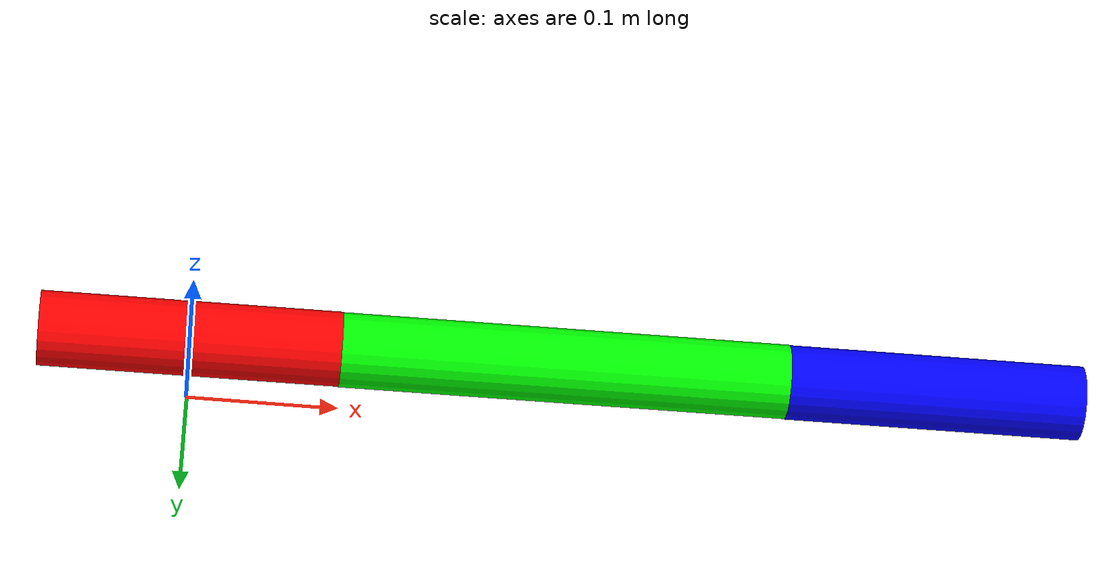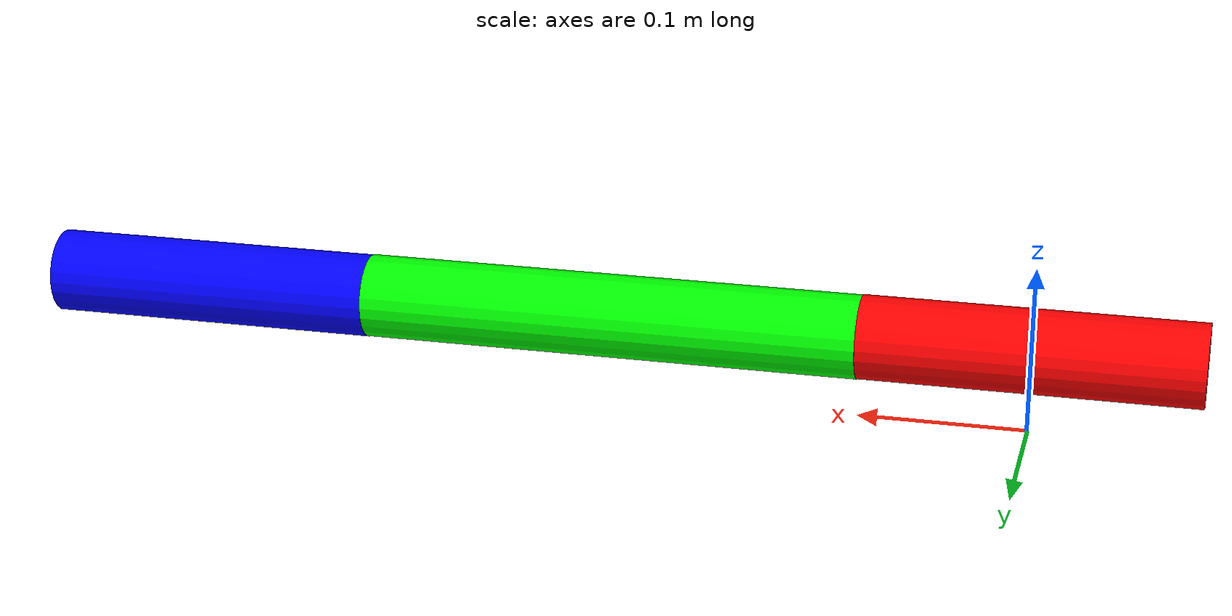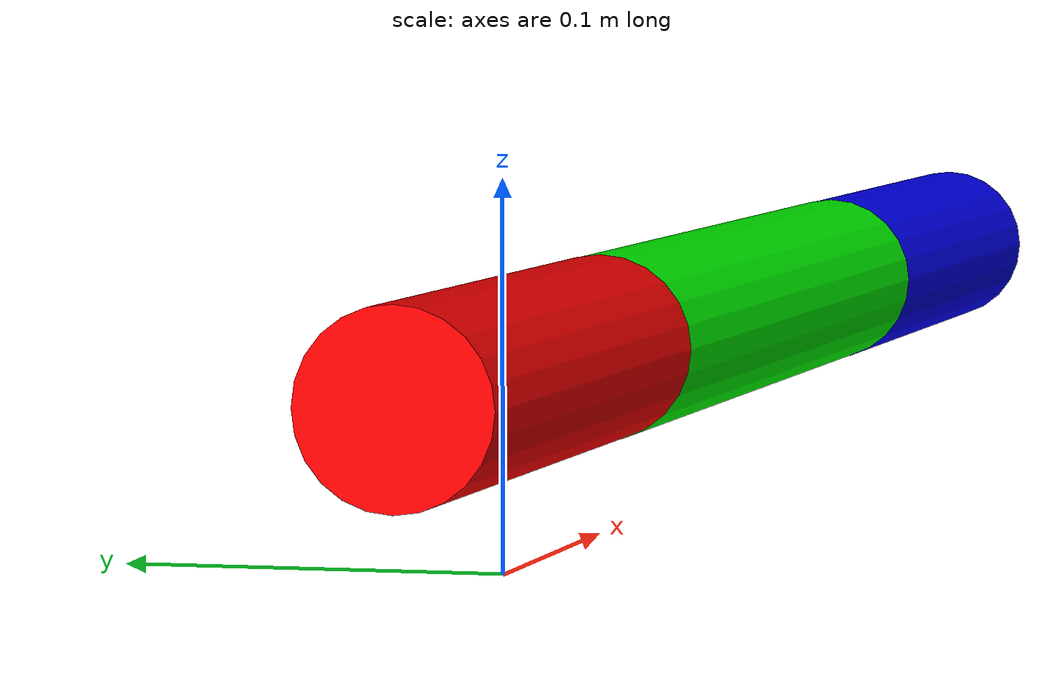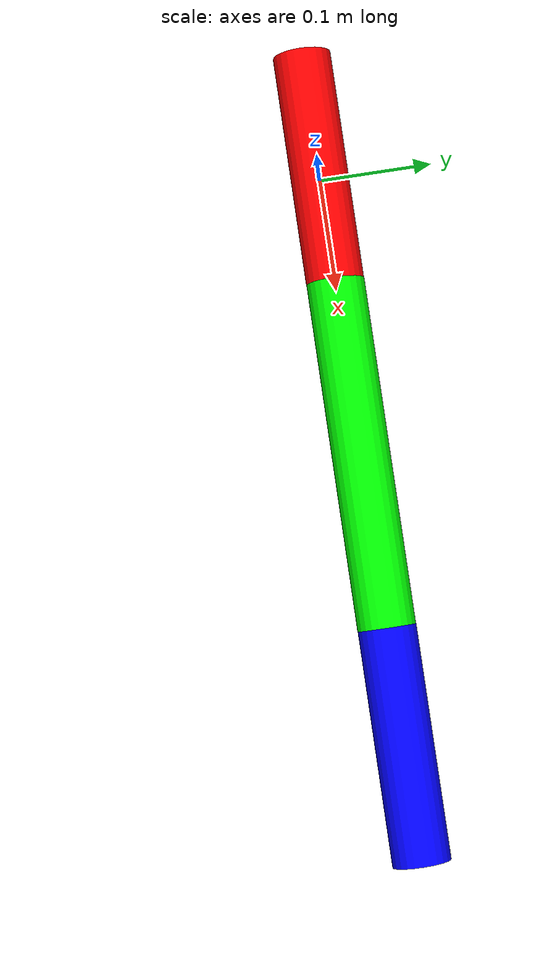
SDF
<?xml version="1.0"?>
<sdf version="1.7">
  <model name="three_link_robot_arm">
    <link name="link1">
      <pose>0.0 0 0.05 1.57 0 1.57</pose>
      <inertial>
        <mass>1</mass>
        <inertia>
          <ixx>0.01455</ixx>
          <iyy>0.01455</iyy>
          <izz>1.041667e-05</izz>
          <ixy>0</ixy>
          <ixz>0</ixz>
          <iyz>0</iyz>
        </inertia>
      </inertial>
      <visual name="link1_visual">
        <geometry>
          <cylinder>
            <radius>0.025</radius>
            <length>0.2</length>
          </cylinder>
        </geometry>
        <material>
          <diffuse>1 0 0 1</diffuse>
        </material>
      </visual>
    </link>

    <joint name="joint1" type="revolute">
      <parent>world</parent>
      <child>link1</child>
      <axis>
        <xyz>0 1 0</xyz>
        <limit>
          <lower>-2.14159</lower>
          <upper>2.14159</upper>
          <effort>0</effort>
          <velocity>1.0</velocity>
        </limit>
        <dynamics>
          <friction>100.0</friction>
        </dynamics>
      </axis>
      <pose>0 0 -0.1 0 0 0</pose>
    </joint>

    <link name="link2">
      <pose>0.25 0 0.05 1.57 0 1.57</pose>
      <inertial>
        <mass>1</mass>
        <inertia>
          <ixx>0.07275</ixx>
          <iyy>0.07275</iyy>
          <izz>1.041667e-05</izz>
          <ixy>0</ixy>
          <ixz>0</ixz>
          <iyz>0</iyz>
        </inertia>
      </inertial>
      <visual name="link2_visual">
        <geometry>
          <cylinder>
            <radius>0.025</radius>
            <length>0.3</length>
          </cylinder>
        </geometry>
        <material>
          <diffuse>0 1 0 1</diffuse>
        </material>
      </visual>
      <collision name="link2_sphere1">
        <geometry>
          <sphere>
            <radius>0.1</radius>
          </sphere>
        </geometry>
      </collision>
    </link>

    <joint name="joint2" type="revolute">
      <parent>link1</parent>
      <child>link2</child>
      <axis>
        <xyz>0 1 0</xyz>
        <limit>
          <lower>-0.01</lower>
          <upper>0.01</upper>
          <effort>0</effort>
          <velocity>1.0</velocity>
        </limit>
        <dynamics>
          <damping>0</damping>
          <friction>10</friction>
        </dynamics>
      </axis>
      <pose>0.0 0 -0.15 0 0 0</pose>
    </joint>

    <link name="link3">
      <pose>0.5 0 0.05 1.57 0 1.57</pose>
      <inertial>
        <mass>1</mass>
        <inertia>
          <ixx>0.01455</ixx>
          <iyy>0.01455</iyy>
          <izz>1.041667e-05</izz>
          <ixy>0</ixy>
          <ixz>0</ixz>
          <iyz>0</iyz>
        </inertia>
      </inertial>
      <visual name="link3_visual">
        <geometry>
          <cylinder>
            <radius>0.025</radius>
            <length>0.2</length>
          </cylinder>
        </geometry>
        <material>
          <diffuse>0 0 1 1</diffuse>
        </material>
      </visual>
      <collision name="link3_sphere1">
        <geometry>
          <sphere>
            <radius>0.025</radius>
          </sphere>
        </geometry>
      </collision>
      <collision name="link3_sphere2">
        <geometry>
          <sphere>
            <radius>0.025</radius>
          </sphere>
        </geometry>
        <pose>0 0 0.05 0 0 0</pose>
      </collision>
      <collision name="link3_sphere3">
        <geometry>
          <sphere>
            <radius>0.025</radius>
          </sphere>
        </geometry>
        <pose>0 0 -0.05 0 0 0</pose>
      </collision>
      <collision name="link3_sphere4">
        <geometry>
          <sphere>
            <radius>0.025</radius>
          </sphere>
        </geometry>
        <pose>0 0 -0.1 0 0 0</pose>
      </collision>
      <collision name="link3_sphere5">
        <geometry>
          <sphere>
            <radius>0.025</radius>
          </sphere>
        </geometry>
        <pose>0 0 -0.15 0 0 0</pose>
      </collision>
      <collision name="link3_sphere6">
        <geometry>
          <sphere>
            <radius>0.025</radius>
          </sphere>
        </geometry>
        <pose>0 0 0.1 0 0 0</pose>
      </collision>
    </link>

    <joint name="joint3" type="revolute">
      <parent>link2</parent>
      <child>link3</child>
      <axis>
        <xyz>0 1 0</xyz>
        <limit>
          <lower>-0.01</lower>
          <upper>0.01</upper>
          <effort>0</effort>
          <velocity>1.0</velocity>
        </limit>
        <dynamics>
          <damping>0</damping>
          <friction>10</friction>
        </dynamics>
      </axis>
      <pose>0 0 -0.1 0 0 0</pose>
    </joint>
  </model>
</sdf>
